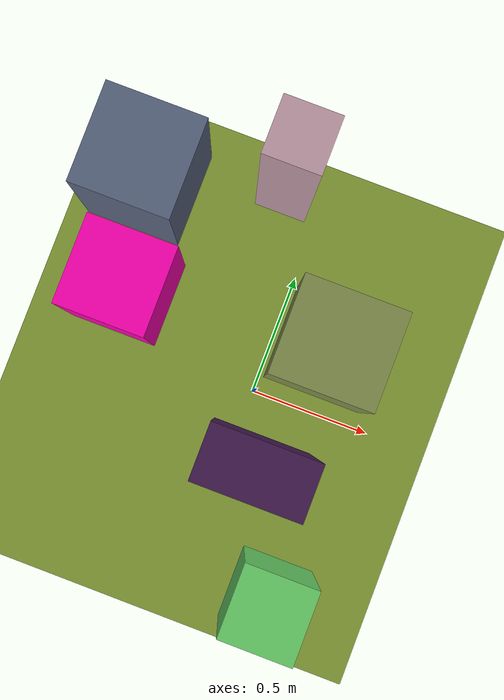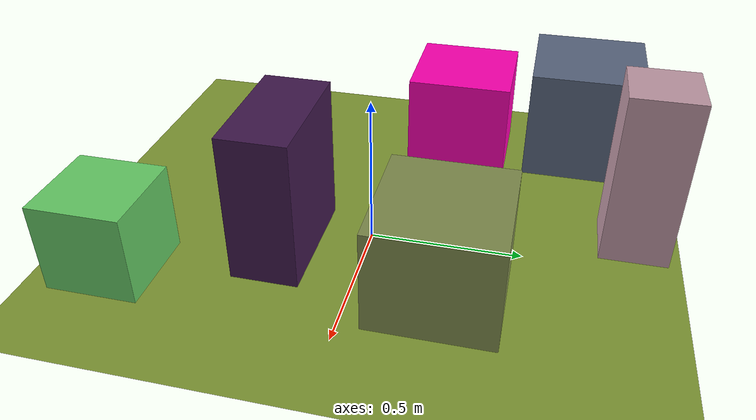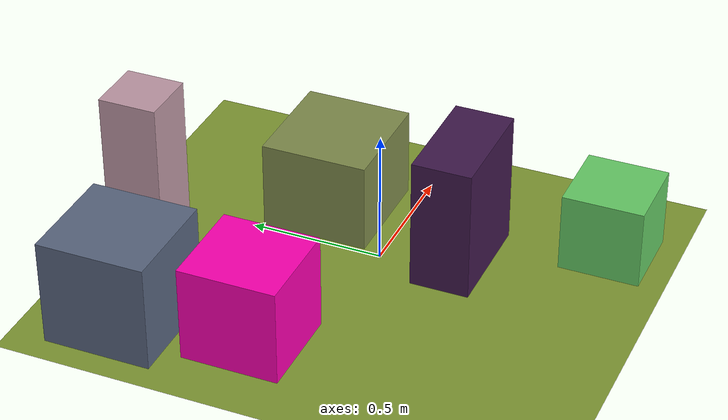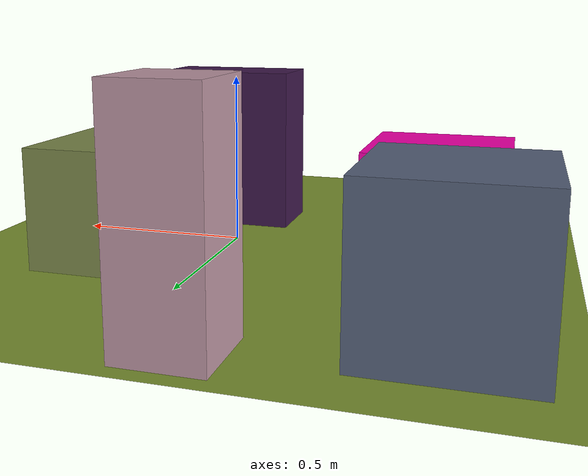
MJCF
<mujoco>
   <asset>
<texture type="skybox" builtin="gradient" rgb1="0.5 0.6 0.7" rgb2="0.8 0.2 0.8" width="256" height="256"/>
<texture name="flat_0" builtin="flat" rgb1="1.0 0.0 0.7" rgb2="1.0 0.0 0.7"  width="200" height="200"/>
<texture name="gradient_1" builtin="gradient" rgb1="0.6 0.3 0.3" rgb2="0.9 0.9 1.0" width="200" height="200"/>
<texture name="gradient_2" builtin="gradient" rgb1="0.5 0.5 1.0" rgb2="0.2 0.3 0.0" width="200" height="200"/>
<texture name="flat_3" builtin="flat" rgb1="0.4 0.8 0.4" rgb2="0.4 0.8 0.4"  width="200" height="200"/>
<texture name="gradient_4" builtin="gradient" rgb1="0.6 1.0 0.2" rgb2="0.4 0.1 0.4" width="200" height="200"/>
<texture name="checker_5" builtin="checker" type="2d" rgb1="0.1 0.1 0.5" rgb2="0.4 0.1 0.1" width="200" height="200"/><material name="flat_0_mat" reflectance="0" texture="flat_0" texuniform="true"/>
<material name="gradient_1_mat" reflectance="0" texture="gradient_1" texuniform="true"/>
<material name="gradient_2_mat" reflectance="0" texture="gradient_2" texuniform="true"/>
<material name="flat_3_mat" reflectance="0" texture="flat_3" texuniform="true"/>
<material name="gradient_4_mat" reflectance="0" texture="gradient_4" texuniform="true"/>
<material name="checker_5_mat" reflectance="0" texrepeat="8 8" texture="checker_5" texuniform="false" />
   </asset>

   <worldbody>
      <light diffuse=".9 .9 .9" pos="0 0 3" dir="0 0 -1"/>
     <geom type="plane" size="1 1 0.1" rgba="0.5 0.6 0.2 1"/>
<geom type="box" pos="-0.63 0.21 0.18" size="0.18 0.18 0.18" material="flat_0_mat" />
<geom type="box" pos="-0.16 0.85 0.29" size="0.11 0.11 0.29" material="gradient_1_mat" />
<geom type="box" pos="-0.71 0.66 0.2" size="0.2 0.2 0.2" material="gradient_2_mat" />
<geom type="box" pos="0.34 -0.76 0.15" size="0.15 0.15 0.15" material="flat_3_mat" />
<geom type="box" pos="0.23 0.27 0.17" size="0.21 0.2 0.17" material="gradient_4_mat" />
<geom type="box" pos="0.1 -0.27 0.25" size="0.21 0.11 0.25" material="checker_5_mat" /><camera euler="60 0 180" fovy="60" name="camera_a" pos="0 -1.5 1"></camera>   </worldbody>
</mujoco>
